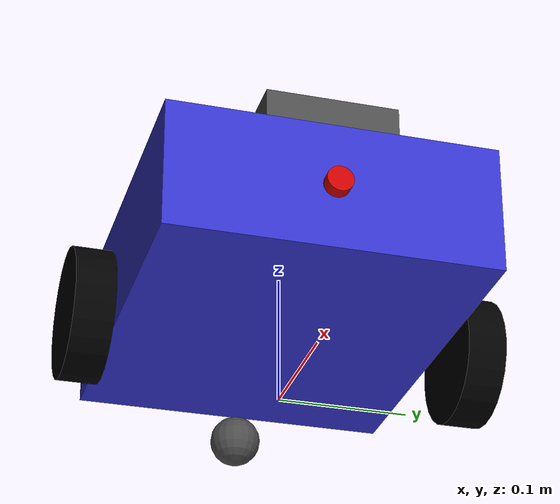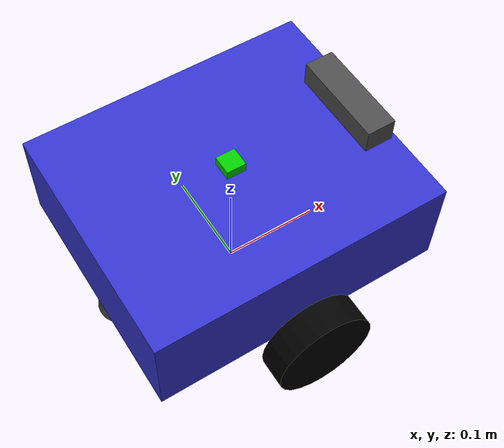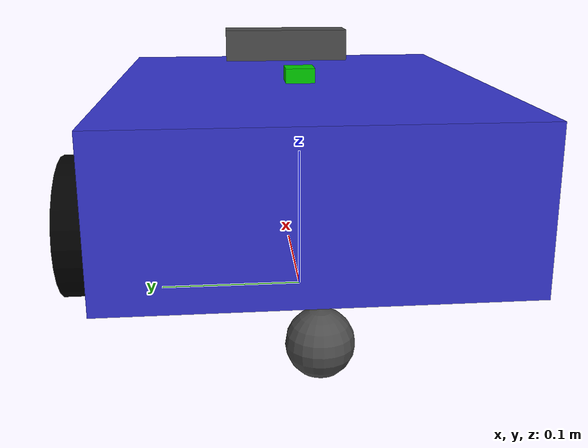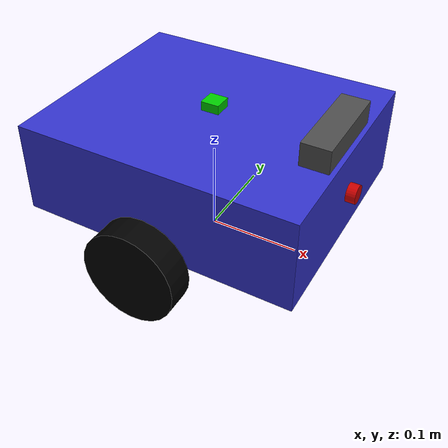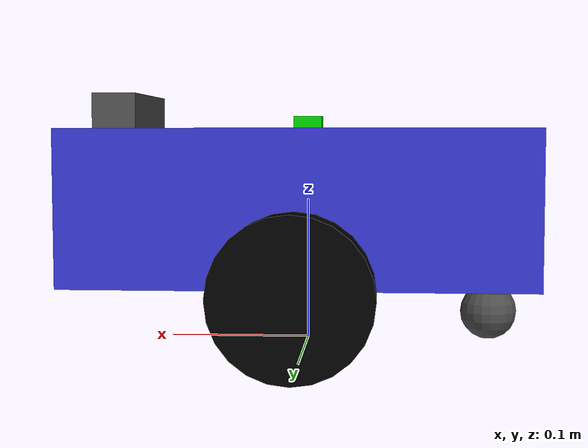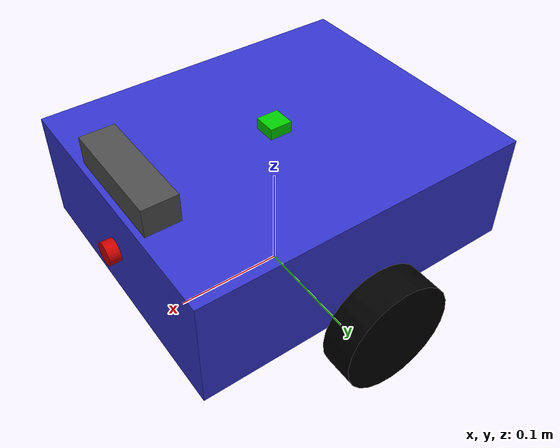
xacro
<?xml version="1.0"?>
<robot xmlns:xacro="http://www.ros.org/wiki/xacro" name="mechano">

  <!-- Include all component xacros -->
  <xacro:include filename="$(find mechano_description)/urdf/common_properties.xacro"/>
  <xacro:include filename="$(find mechano_description)/urdf/materials.xacro"/>
  <xacro:include filename="$(find mechano_description)/urdf/base.xacro"/>
  <xacro:include filename="$(find mechano_description)/urdf/wheels.xacro"/>
  <xacro:include filename="$(find mechano_description)/urdf/sensors.xacro"/>
  <xacro:include filename="$(find mechano_description)/urdf/ros2_control.xacro"/>

  <!-- Arguments for conditional includes -->
  <xacro:arg name="use_sim" default="false"/>
  <xacro:arg name="use_fake_hardware" default="false"/>

  <!-- Include Gazebo plugins only in simulation -->
  <xacro:if value="$(arg use_sim)">
    <xacro:include filename="$(find mechano_description)/urdf/gazebo.xacro"/>
  </xacro:if>

  <!-- Instantiate the robot -->
  <xacro:base_link/>
  <xacro:wheel prefix="left" y_offset="0.15"/>
  <xacro:wheel prefix="right" y_offset="-0.15"/>
  <xacro:caster_wheel/>
  <xacro:imu_sensor/>
  <xacro:camera_sensor/>
  <xacro:distance_sensor/>

  <!-- ros2_control hardware interface -->
  <xacro:mechano_ros2_control
    use_sim="$(arg use_sim)"
    use_fake_hardware="$(arg use_fake_hardware)"/>

</robot>

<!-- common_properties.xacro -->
<robot xmlns:xacro="http://www.ros.org/wiki/xacro">

  <!-- Robot dimensions -->
  <xacro:property name="base_length" value="0.30"/>
  <xacro:property name="base_width" value="0.25"/>
  <xacro:property name="base_height" value="0.10"/>

  <xacro:property name="wheel_radius" value="0.05"/>
  <xacro:property name="wheel_width" value="0.03"/>
  <xacro:property name="wheel_separation" value="0.30"/>

  <xacro:property name="caster_radius" value="0.02"/>

  <!-- Masses -->
  <xacro:property name="base_mass" value="5.0"/>
  <xacro:property name="wheel_mass" value="0.5"/>
  <xacro:property name="caster_mass" value="0.1"/>

  <!-- Inertia macro for box -->
  <xacro:macro name="box_inertia" params="m x y z">
    <inertia
      ixx="${(1/12) * m * (y*y + z*z)}"
      ixy="0.0"
      ixz="0.0"
      iyy="${(1/12) * m * (x*x + z*z)}"
      iyz="0.0"
      izz="${(1/12) * m * (x*x + y*y)}"/>
  </xacro:macro>

  <!-- Inertia macro for cylinder -->
  <xacro:macro name="cylinder_inertia" params="m r h">
    <inertia
      ixx="${(1/12) * m * (3*r*r + h*h)}"
      ixy="0.0"
      ixz="0.0"
      iyy="${(1/12) * m * (3*r*r + h*h)}"
      iyz="0.0"
      izz="${(1/2) * m * r*r}"/>
  </xacro:macro>

  <!-- Inertia macro for sphere -->
  <xacro:macro name="sphere_inertia" params="m r">
    <inertia
      ixx="${(2/5) * m * r*r}"
      ixy="0.0"
      ixz="0.0"
      iyy="${(2/5) * m * r*r}"
      iyz="0.0"
      izz="${(2/5) * m * r*r}"/>
  </xacro:macro>

</robot>

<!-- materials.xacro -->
<robot xmlns:xacro="http://www.ros.org/wiki/xacro">

  <!-- RViz materials -->
  <material name="white">
    <color rgba="1.0 1.0 1.0 1.0"/>
  </material>

  <material name="black">
    <color rgba="0.0 0.0 0.0 1.0"/>
  </material>

  <material name="dark_grey">
    <color rgba="0.3 0.3 0.3 1.0"/>
  </material>

  <material name="light_grey">
    <color rgba="0.7 0.7 0.7 1.0"/>
  </material>

  <material name="blue">
    <color rgba="0.2 0.2 0.8 1.0"/>
  </material>

  <material name="red">
    <color rgba="0.8 0.0 0.0 1.0"/>
  </material>

  <material name="green">
    <color rgba="0.0 0.8 0.0 1.0"/>
  </material>

  <material name="orange">
    <color rgba="1.0 0.5 0.0 1.0"/>
  </material>

  <!-- Gazebo materials macro -->
  <xacro:macro name="gazebo_material" params="link color">
    <gazebo reference="${link}">
      <material>Gazebo/${color}</material>
    </gazebo>
  </xacro:macro>

</robot>

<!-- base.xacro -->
<robot xmlns:xacro="http://www.ros.org/wiki/xacro">

  <!-- Base link macro -->
  <xacro:macro name="base_link">

    <!-- Base footprint - on the ground plane -->
    <link name="base_footprint"/>

    <!-- Base link - center of robot body -->
    <link name="base_link">
      <visual>
        <geometry>
          <box size="${base_length} ${base_width} ${base_height}"/>
        </geometry>
        <material name="blue"/>
      </visual>
      <collision>
        <geometry>
          <box size="${base_length} ${base_width} ${base_height}"/>
        </geometry>
      </collision>
      <inertial>
        <mass value="${base_mass}"/>
        <xacro:box_inertia m="${base_mass}" x="${base_length}" y="${base_width}" z="${base_height}"/>
      </inertial>
    </link>

    <!-- Joint from footprint to base_link -->
    <joint name="base_footprint_joint" type="fixed">
      <parent link="base_footprint"/>
      <child link="base_link"/>
      <origin xyz="0 0 ${wheel_radius + base_height/2}" rpy="0 0 0"/>
    </joint>

    <!-- Gazebo material for base -->
    <gazebo reference="base_link">
      <material>Gazebo/Blue</material>
    </gazebo>

  </xacro:macro>

  <!-- Caster wheel macro -->
  <xacro:macro name="caster_wheel">

    <link name="caster_link">
      <visual>
        <geometry>
          <sphere radius="${caster_radius}"/>
        </geometry>
        <material name="dark_grey"/>
      </visual>
      <collision>
        <geometry>
          <sphere radius="${caster_radius}"/>
        </geometry>
      </collision>
      <inertial>
        <mass value="${caster_mass}"/>
        <xacro:sphere_inertia m="${caster_mass}" r="${caster_radius}"/>
      </inertial>
    </link>

    <joint name="caster_joint" type="fixed">
      <parent link="base_link"/>
      <child link="caster_link"/>
      <origin xyz="${-base_length/2 + caster_radius} 0 ${-base_height/2 - wheel_radius + caster_radius}" rpy="0 0 0"/>
    </joint>

    <!-- Gazebo friction for caster (low friction for smooth rolling) -->
    <gazebo reference="caster_link">
      <material>Gazebo/Grey</material>
      <mu1>0.001</mu1>
      <mu2>0.001</mu2>
    </gazebo>

  </xacro:macro>

</robot>

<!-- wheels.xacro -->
<robot xmlns:xacro="http://www.ros.org/wiki/xacro">

  <!-- Wheel macro -->
  <xacro:macro name="wheel" params="prefix y_offset">

    <link name="${prefix}_wheel">
      <visual>
        <geometry>
          <cylinder radius="${wheel_radius}" length="${wheel_width}"/>
        </geometry>
        <origin xyz="0 0 0" rpy="${pi/2} 0 0"/>
        <material name="black"/>
      </visual>
      <collision>
        <geometry>
          <cylinder radius="${wheel_radius}" length="${wheel_width}"/>
        </geometry>
        <origin xyz="0 0 0" rpy="${pi/2} 0 0"/>
      </collision>
      <inertial>
        <mass value="${wheel_mass}"/>
        <origin xyz="0 0 0" rpy="${pi/2} 0 0"/>
        <xacro:cylinder_inertia m="${wheel_mass}" r="${wheel_radius}" h="${wheel_width}"/>
      </inertial>
    </link>

    <joint name="${prefix}_wheel_joint" type="continuous">
      <parent link="base_link"/>
      <child link="${prefix}_wheel"/>
      <origin xyz="0 ${y_offset} ${-base_height/2}" rpy="0 0 0"/>
      <axis xyz="0 1 0"/>
      <dynamics damping="0.1" friction="0.1"/>
    </joint>

    <!-- Gazebo properties for wheel -->
    <gazebo reference="${prefix}_wheel">
      <material>Gazebo/Black</material>
      <mu1>1.0</mu1>
      <mu2>1.0</mu2>
      <kp>1000000.0</kp>
      <kd>100.0</kd>
    </gazebo>

  </xacro:macro>

</robot>

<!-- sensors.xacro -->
<robot xmlns:xacro="http://www.ros.org/wiki/xacro">

  <!-- IMU sensor -->
  <xacro:macro name="imu_sensor">

    <link name="imu_link">
      <visual>
        <geometry>
          <box size="0.02 0.02 0.01"/>
        </geometry>
        <material name="green"/>
      </visual>
      <collision>
        <geometry>
          <box size="0.02 0.02 0.01"/>
        </geometry>
      </collision>
      <inertial>
        <mass value="0.01"/>
        <xacro:box_inertia m="0.01" x="0.02" y="0.02" z="0.01"/>
      </inertial>
    </link>

    <joint name="imu_joint" type="fixed">
      <parent link="base_link"/>
      <child link="imu_link"/>
      <origin xyz="0 0 ${base_height/2 + 0.005}" rpy="0 0 0"/>
    </joint>

    <gazebo reference="imu_link">
      <material>Gazebo/Green</material>
    </gazebo>

  </xacro:macro>

  <!-- Stereo camera sensor -->
  <xacro:macro name="camera_sensor">

    <link name="camera_link">
      <visual>
        <geometry>
          <box size="0.03 0.10 0.025"/>
        </geometry>
        <material name="dark_grey"/>
      </visual>
      <collision>
        <geometry>
          <box size="0.03 0.10 0.025"/>
        </geometry>
      </collision>
      <inertial>
        <mass value="0.1"/>
        <xacro:box_inertia m="0.1" x="0.03" y="0.10" z="0.025"/>
      </inertial>
    </link>

    <joint name="camera_joint" type="fixed">
      <parent link="base_link"/>
      <child link="camera_link"/>
      <origin xyz="${base_length/2 - 0.02} 0 ${base_height/2 + 0.0125}" rpy="0 0 0"/>
    </joint>

    <!-- Camera optical frame (Z forward, X right, Y down) -->
    <link name="camera_depth_frame"/>

    <joint name="camera_depth_joint" type="fixed">
      <parent link="camera_link"/>
      <child link="camera_depth_frame"/>
      <origin xyz="0.015 0 0" rpy="${-pi/2} 0 ${-pi/2}"/>
    </joint>

    <link name="camera_color_frame"/>

    <joint name="camera_color_joint" type="fixed">
      <parent link="camera_link"/>
      <child link="camera_color_frame"/>
      <origin xyz="0.015 0.0175 0" rpy="${-pi/2} 0 ${-pi/2}"/>
    </joint>

    <gazebo reference="camera_link">
      <material>Gazebo/Grey</material>
    </gazebo>

  </xacro:macro>

  <!-- Distance sensor -->
  <xacro:macro name="distance_sensor">

    <link name="distance_sensor_link">
      <visual>
        <geometry>
          <cylinder radius="0.01" length="0.02"/>
        </geometry>
        <origin xyz="0 0 0" rpy="0 ${pi/2} 0"/>
        <material name="red"/>
      </visual>
      <collision>
        <geometry>
          <cylinder radius="0.01" length="0.02"/>
        </geometry>
        <origin xyz="0 0 0" rpy="0 ${pi/2} 0"/>
      </collision>
      <inertial>
        <mass value="0.005"/>
        <xacro:cylinder_inertia m="0.005" r="0.01" h="0.02"/>
      </inertial>
    </link>

    <joint name="distance_sensor_joint" type="fixed">
      <parent link="base_link"/>
      <child link="distance_sensor_link"/>
      <origin xyz="${base_length/2} 0 0" rpy="0 0 0"/>
    </joint>

    <gazebo reference="distance_sensor_link">
      <material>Gazebo/Red</material>
    </gazebo>

  </xacro:macro>

</robot>
